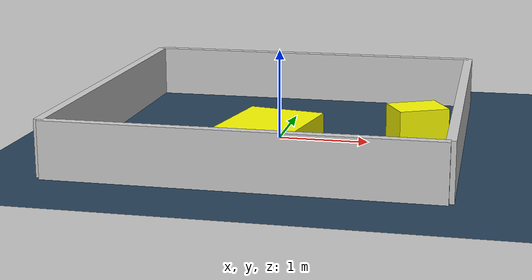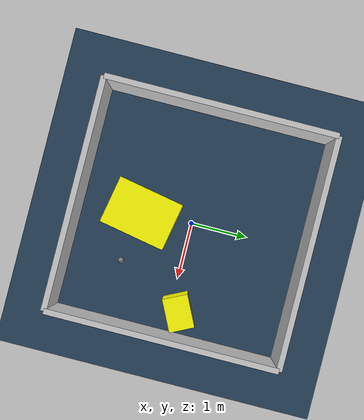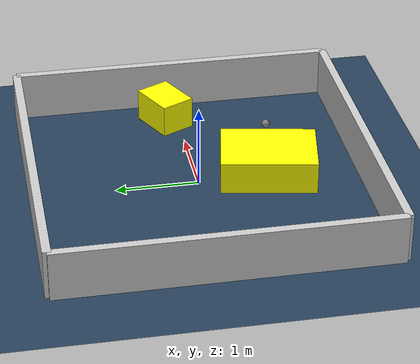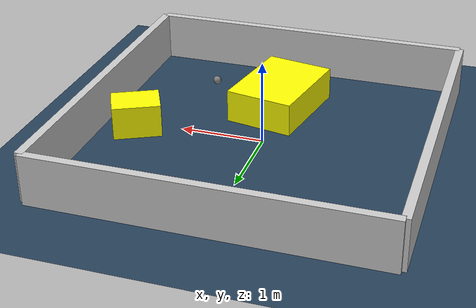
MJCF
<?xml version="1.0" ?>
<mujoco model="generated_environment">
  <option timestep="0.01" integrator="RK4" cone="elliptic"/>
  <default>
    <geom density="1"/>
  </default>
  <asset>
    <texture builtin="gradient" height="3072" rgb1="0.3 0.5 0.7" rgb2="0 0 0" type="skybox" width="512"/>
    <texture builtin="checker" height="300" mark="edge" markrgb="0.8 0.8 0.8" name="groundplane" rgb1="0.2 0.3 0.4" rgb2="0.1 0.2 0.3" type="2d" width="300"/>
    <material name="groundplane" reflectance="0.2" texrepeat="5 5" texture="groundplane" texuniform="true"/>
    <material name="robot" rgba="0.0 1.0 0.0 1"/>
  </asset>
  <worldbody>
    <light dir="0 0 -1" directional="true" pos="0 0 1.5"/>
    <geom condim="4" friction="1.0 0.005 0.001" material="groundplane" name="floor" size="0 0 0.05" type="plane"/>
    <body name="walls">
      <geom name="wall_1" condim="4" pos="-2.0 0.0 0.3" rgba="0.800000011920929 0.800000011920929 0.800000011920929 1.0" size="0.05 2.0 0.3" type="box"/>
      <geom name="wall_2" condim="4" pos="2.0 0.0 0.3" rgba="0.800000011920929 0.800000011920929 0.800000011920929 1.0" size="0.05 2.0 0.3" type="box"/>
      <geom name="wall_3" condim="4" pos="0.0 -2.0 0.3" rgba="0.800000011920929 0.800000011920929 0.800000011920929 1.0" size="2.0 0.05 0.3" type="box"/>
      <geom name="wall_4" condim="4" pos="0.0 2.0 0.3" rgba="0.800000011920929 0.800000011920929 0.800000011920929 1.0" size="2.0 0.05 0.3" type="box"/>
    </body>
    <body name="robot">
      <joint name="joint_x" type="slide" pos="0 0 0" axis="1 0 0"/>
      <joint name="joint_y" type="slide" pos="0 0 0" axis="0 1 0"/>
      <geom name="robot" type="sphere" pos="0.9207441642477652 -1.0209636492144702 0.2" size="0.05" mass="5." friction="1.0 0.005 0.0001" condim="4"/>
      <site name="sensor_ball"/>
    </body>
    <body name="obstacle_1_movable">
      <geom name="obstacle_1_movable" condim="4" pos="0.04178188954084017 -0.8640325994740181 0.2" euler="0 0 79.37863869664493" friction="1.0 0.005 0.001" rgba="1 1 0 1" size="0.580016238574415 0.4189845755543471 0.2" type="box" mass="0.1"/>
      <joint type="free"/>
    </body>
    <body name="obstacle_2_movable">
      <geom name="obstacle_2_movable" condim="4" pos="1.52646455482719 0.1624865922516785 0.2" euler="0 0 116.36013584626919" friction="1.0 0.005 0.001" rgba="1 1 0 1" size="0.21935310450381676 0.28725899626776413 0.2" type="box" mass="0.1"/>
      <joint type="free"/>
    </body>
  </worldbody>
  <actuator>
    <motor name="actuator_x" joint="joint_x" gear="1" ctrlrange="-1 1"/>
    <motor name="actuator_y" joint="joint_y" gear="1" ctrlrange="-1 1"/>
  </actuator>
</mujoco>
